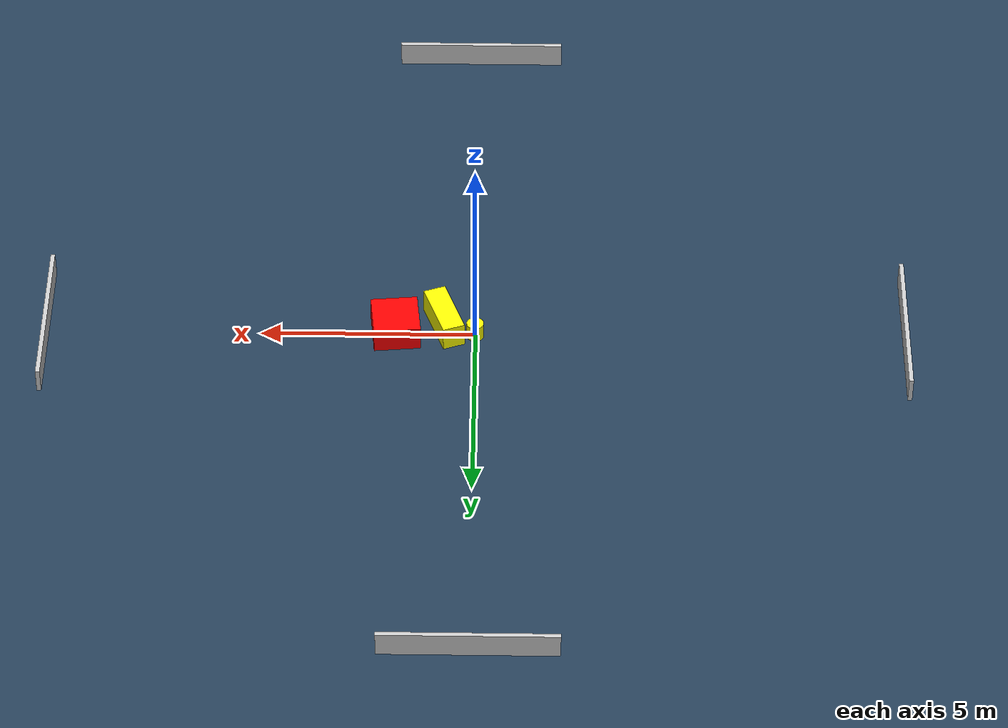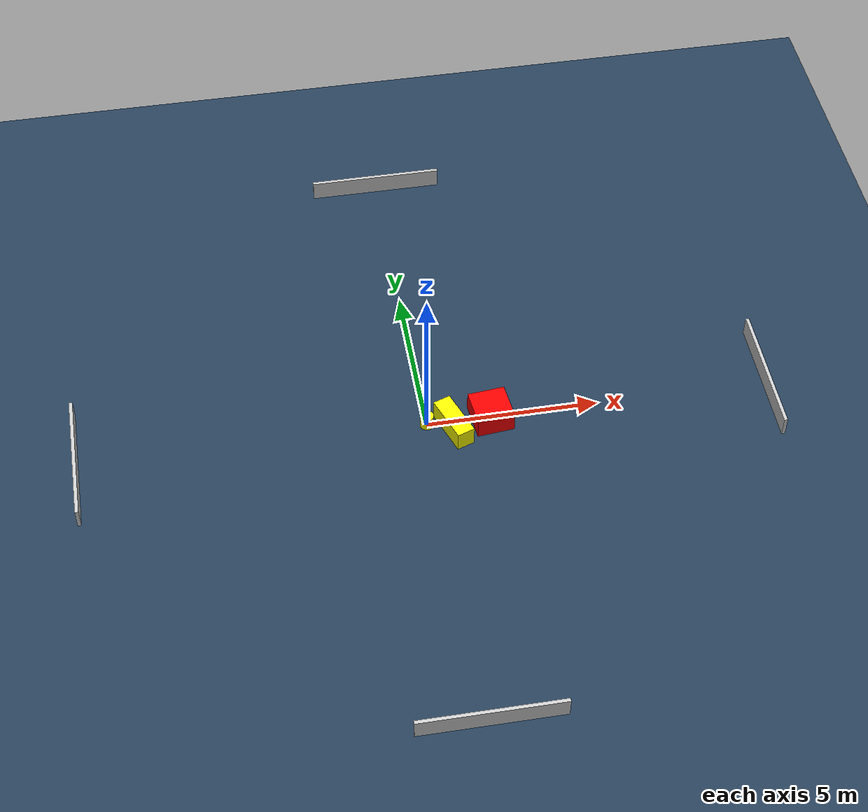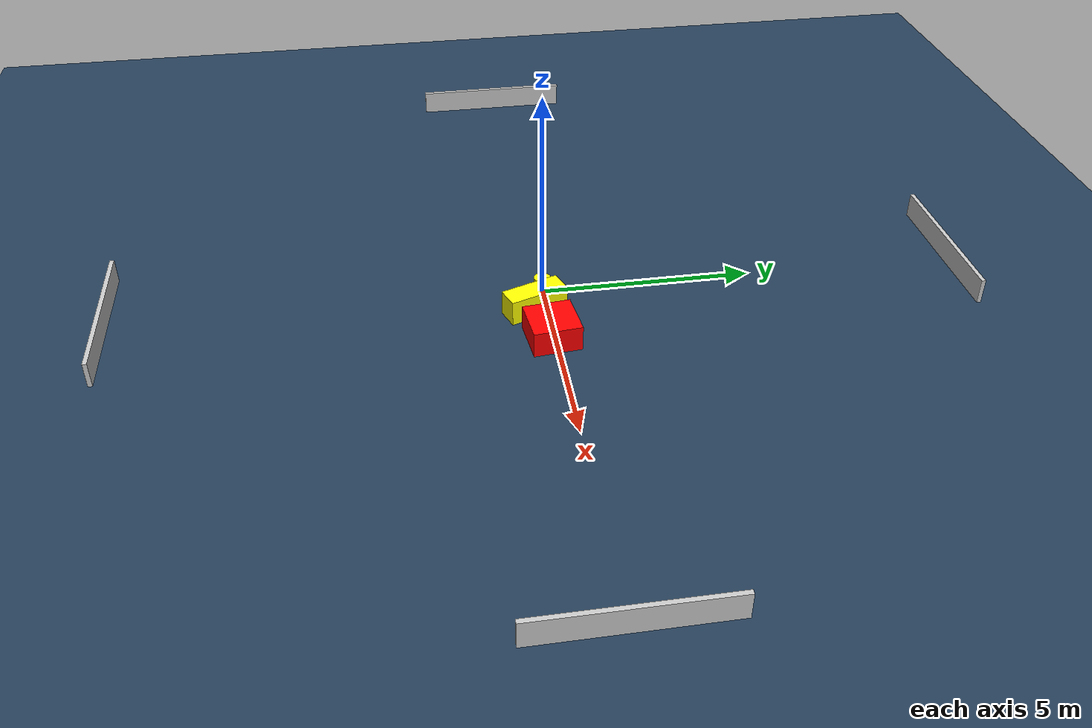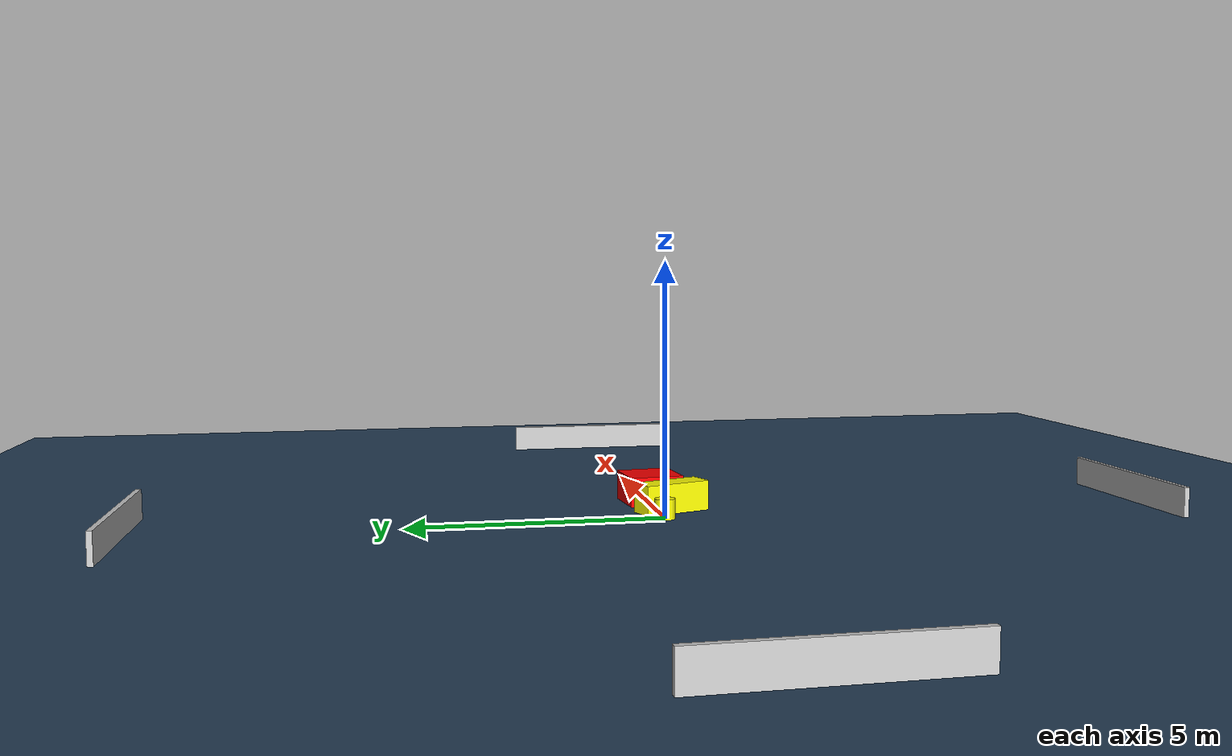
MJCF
<?xml version="1.0" ?>
<mujoco model="generated_environment">
  <option timestep="0.01" integrator="RK4" cone="elliptic"/>
  <default>
    <geom density="1"/>
  </default>
  <asset>
    <texture builtin="gradient" height="3072" name="skybox" rgb1="0.3 0.5 0.7" rgb2="0 0 0" type="skybox" width="512"/>
    <texture builtin="checker" height="300" name="groundplane" rgb1="0.2 0.3 0.4" rgb2="0.1 0.2 0.3" type="2d" width="300"/>
    <material name="groundplane" reflectance="0.2" texrepeat="5 5" texture="groundplane"/>
  </asset>
  <worldbody>
    <light dir="0 0 -1" directional="true" pos="0 0 1.5"/>
    <geom condim="3" friction="0.5 0.005 0.001" material="groundplane" name="floor" pos="0 0 0" size="0 0 0.05" type="plane"/>
    <body name="walls">
      <geom name="wall_1" condim="4" pos="-10.0 0.0 0.3" rgba="0.800000011920929 0.800000011920929 0.800000011920929 1.0" size="0.05 2.0 0.3" type="box"/>
      <geom name="wall_2" condim="4" pos="10.0 0.0 0.3" rgba="0.800000011920929 0.800000011920929 0.800000011920929 1.0" size="0.05 2.0 0.3" type="box"/>
      <geom name="wall_3" condim="4" pos="0.0 -10.0 0.3" rgba="0.800000011920929 0.800000011920929 0.800000011920929 1.0" size="2.0 0.05 0.3" type="box"/>
      <geom name="wall_4" condim="4" pos="0.0 10.0 0.3" rgba="0.800000011920929 0.800000011920929 0.800000011920929 1.0" size="2.0 0.05 0.3" type="box"/>
    </body>
    <body name="robot">
      <joint name="joint_x" type="slide" pos="0 0 0" axis="1 0 0"/>
      <joint name="joint_y" type="slide" pos="0 0 0" axis="0 1 0"/>
      <geom name="robot" type="cylinder" pos="0.0 0.0 0.2" size="0.2 0.2 0.0" mass="5.0" friction="1.0 0.005 0.0001" condim="4" rgba="1.0 1.0 0.0 1.0"/>
    </body>
    <body name="obstacle_1_movable">
      <geom name="obstacle_1_movable" condim="4" pos="0.7299055107392599 -0.29040358256382054 0.3" euler="0 0 199.9807464957217" friction="0.0 0.005 0.001" rgba="1.0 1.0 0.0 1.0" size="0.2644221968832214 0.7081979112726451 0.3" type="box" mass="0.1"/>
      <joint type="free"/>
    </body>
    <body name="obstacle_2_static">
      <geom name="obstacle_2_static" condim="4" pos="1.8535091708546663 -0.06277419042530037 0.3" euler="0 0 5.669171350249158" friction="0.0 0.005 0.001" rgba="1.0 0.0 0.0 1.0" size="0.5446166348879229 0.5557072881825161 0.3" type="box"/>
    </body>
  </worldbody>
  <actuator>
    <motor name="actuator_x" joint="joint_x" gear="1" ctrlrange="-1 1"/>
    <motor name="actuator_y" joint="joint_y" gear="1" ctrlrange="-1 1"/>
  </actuator>
</mujoco>
